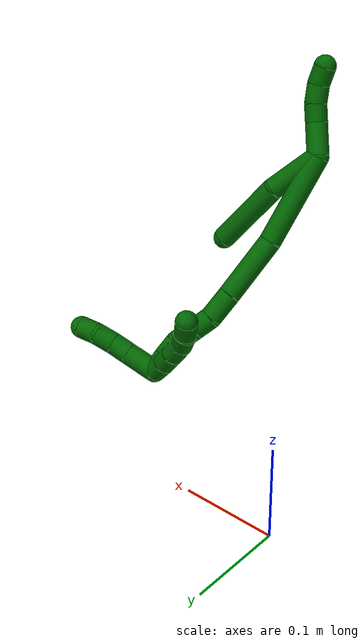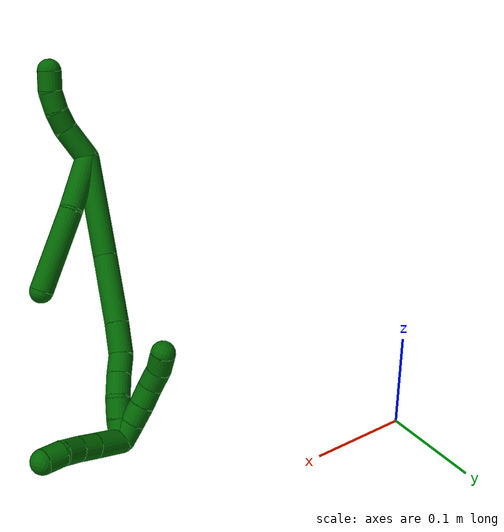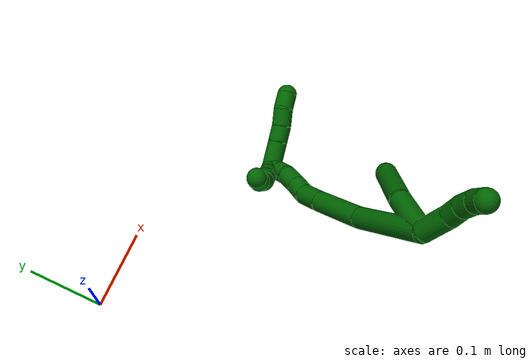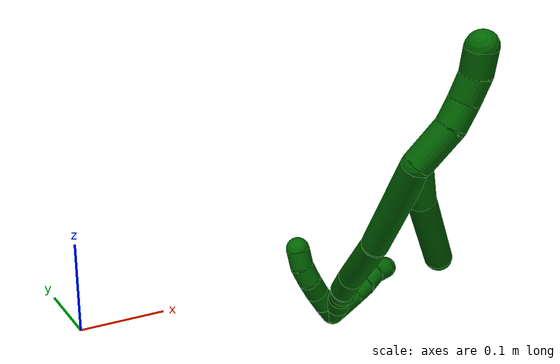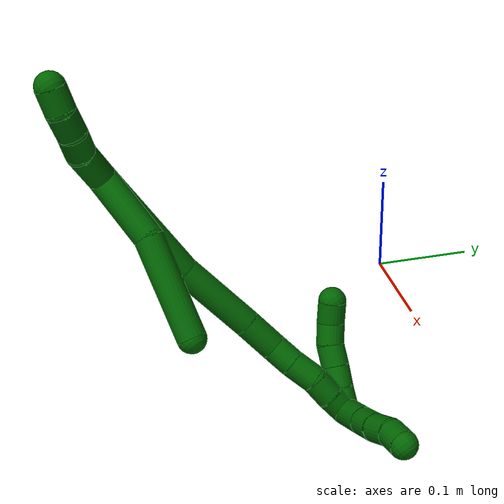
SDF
<sdf version="1.7">
 <world name="default">
  <model name="6">
   <static>0</static>
   <link name="6">
    <collision name="collision-cylinder-e_1_2_8">
     <pose>0.003228 -0.000587 0.030469 0.019279 0.105536 0.001018</pose>
     <geometry><cylinder><radius>0.0125</radius><length>0.061289</length></cylinder></geometry>
     <surface>
      <friction><ode><mu>1.16</mu><mu2>1.16</mu2><slip1>0</slip1><slip2>0</slip2></ode></friction>
      <contact><ode><kp>1e+06</kp><kd>1</kd><max_vel>0</max_vel><min_depth>0.001</min_depth></ode></contact>
     </surface>
    </collision>
    <visual name="visual-cylinder-e_1_2_8">
     <pose>0.003228 -0.000587 0.030469 0.019279 0.105536 0.001018</pose>
     <geometry><cylinder><radius>0.0125</radius><length>0.061289</length></cylinder></geometry>
     <material><ambient>0 0.392157 0.003922 1</ambient></material>
    </visual>
    <collision name="collision-cylinder-e_2_8_6">
     <pose>0.007311 -0.013169 0.103631 0.273873 0.019273 0.002656</pose>
     <geometry><cylinder><radius>0.0125</radius><length>0.088711</length></cylinder></geometry>
     <surface>
      <friction><ode><mu>1.16</mu><mu2>1.16</mu2><slip1>0</slip1><slip2>0</slip2></ode></friction>
      <contact><ode><kp>1e+06</kp><kd>1</kd><max_vel>0</max_vel><min_depth>0.001</min_depth></ode></contact>
     </surface>
    </collision>
    <visual name="visual-cylinder-e_2_8_6">
     <pose>0.007311 -0.013169 0.103631 0.273873 0.019273 0.002656</pose>
     <geometry><cylinder><radius>0.0125</radius><length>0.088711</length></cylinder></geometry>
     <material><ambient>0 0.392157 0.003922 1</ambient></material>
    </visual>
    <collision name="collision-cylinder-e_1_2_9">
     <pose>-0.015026 0.008717 -0.007254 -2.2648 -0.924269 1.63135</pose>
     <geometry><cylinder><radius>0.0125</radius><length>0.03765</length></cylinder></geometry>
     <surface>
      <friction><ode><mu>1.16</mu><mu2>1.16</mu2><slip1>0</slip1><slip2>0</slip2></ode></friction>
      <contact><ode><kp>1e+06</kp><kd>1</kd><max_vel>0</max_vel><min_depth>0.001</min_depth></ode></contact>
     </surface>
    </collision>
    <visual name="visual-cylinder-e_1_2_9">
     <pose>-0.015026 0.008717 -0.007254 -2.2648 -0.924269 1.63135</pose>
     <geometry><cylinder><radius>0.0125</radius><length>0.03765</length></cylinder></geometry>
     <material><ambient>0 0.392157 0.003922 1</ambient></material>
    </visual>
    <collision name="collision-cylinder-e_2_9_10">
     <pose>-0.036656 0.023981 -0.019287 -2.20147 -0.683727 1.22199</pose>
     <geometry><cylinder><radius>0.0125</radius><length>0.02091</length></cylinder></geometry>
     <surface>
      <friction><ode><mu>1.16</mu><mu2>1.16</mu2><slip1>0</slip1><slip2>0</slip2></ode></friction>
      <contact><ode><kp>1e+06</kp><kd>1</kd><max_vel>0</max_vel><min_depth>0.001</min_depth></ode></contact>
     </surface>
    </collision>
    <visual name="visual-cylinder-e_2_9_10">
     <pose>-0.036656 0.023981 -0.019287 -2.20147 -0.683727 1.22199</pose>
     <geometry><cylinder><radius>0.0125</radius><length>0.02091</length></cylinder></geometry>
     <material><ambient>0 0.392157 0.003922 1</ambient></material>
    </visual>
    <collision name="collision-cylinder-e_3_10_11">
     <pose>-0.049179 0.036112 -0.030595 -2.43391 -0.603201 1.39988</pose>
     <geometry><cylinder><radius>0.0125</radius><length>0.020866</length></cylinder></geometry>
     <surface>
      <friction><ode><mu>1.16</mu><mu2>1.16</mu2><slip1>0</slip1><slip2>0</slip2></ode></friction>
      <contact><ode><kp>1e+06</kp><kd>1</kd><max_vel>0</max_vel><min_depth>0.001</min_depth></ode></contact>
     </surface>
    </collision>
    <visual name="visual-cylinder-e_3_10_11">
     <pose>-0.049179 0.036112 -0.030595 -2.43391 -0.603201 1.39988</pose>
     <geometry><cylinder><radius>0.0125</radius><length>0.020866</length></cylinder></geometry>
     <material><ambient>0 0.392157 0.003922 1</ambient></material>
    </visual>
    <collision name="collision-cylinder-e_4_11_5">
     <pose>-0.058719 0.046767 -0.045309 -2.58708 -0.359848 1.1374</pose>
     <geometry><cylinder><radius>0.0125</radius><length>0.020574</length></cylinder></geometry>
     <surface>
      <friction><ode><mu>1.16</mu><mu2>1.16</mu2><slip1>0</slip1><slip2>0</slip2></ode></friction>
      <contact><ode><kp>1e+06</kp><kd>1</kd><max_vel>0</max_vel><min_depth>0.001</min_depth></ode></contact>
     </surface>
    </collision>
    <visual name="visual-cylinder-e_4_11_5">
     <pose>-0.058719 0.046767 -0.045309 -2.58708 -0.359848 1.1374</pose>
     <geometry><cylinder><radius>0.0125</radius><length>0.020574</length></cylinder></geometry>
     <material><ambient>0 0.392157 0.003922 1</ambient></material>
    </visual>
    <collision name="collision-cylinder-e_1_2_12">
     <pose>0.027315 -0.011786 0.043835 0.262661 0.541709 0.073324</pose>
     <geometry><cylinder><radius>0.0125</radius><length>0.105953</length></cylinder></geometry>
     <surface>
      <friction><ode><mu>1.16</mu><mu2>1.16</mu2><slip1>0</slip1><slip2>0</slip2></ode></friction>
      <contact><ode><kp>1e+06</kp><kd>1</kd><max_vel>0</max_vel><min_depth>0.001</min_depth></ode></contact>
     </surface>
    </collision>
    <visual name="visual-cylinder-e_1_2_12">
     <pose>0.027315 -0.011786 0.043835 0.262661 0.541709 0.073324</pose>
     <geometry><cylinder><radius>0.0125</radius><length>0.105953</length></cylinder></geometry>
     <material><ambient>0 0.392157 0.003922 1</ambient></material>
    </visual>
    <collision name="collision-cylinder-e_2_12_13">
     <pose>0.073351 -0.025624 0.118979 0.065454 0.53796 0.018049</pose>
     <geometry><cylinder><radius>0.0125</radius><length>0.073073</length></cylinder></geometry>
     <surface>
      <friction><ode><mu>1.16</mu><mu2>1.16</mu2><slip1>0</slip1><slip2>0</slip2></ode></friction>
      <contact><ode><kp>1e+06</kp><kd>1</kd><max_vel>0</max_vel><min_depth>0.001</min_depth></ode></contact>
     </surface>
    </collision>
    <visual name="visual-cylinder-e_2_12_13">
     <pose>0.073351 -0.025624 0.118979 0.065454 0.53796 0.018049</pose>
     <geometry><cylinder><radius>0.0125</radius><length>0.073073</length></cylinder></geometry>
     <material><ambient>0 0.392157 0.003922 1</ambient></material>
    </visual>
    <collision name="collision-cylinder-e_3_13_14">
     <pose>0.099968 -0.028646 0.164712 0.067093 0.49994 0.017135</pose>
     <geometry><cylinder><radius>0.0125</radius><length>0.032945</length></cylinder></geometry>
     <surface>
      <friction><ode><mu>1.16</mu><mu2>1.16</mu2><slip1>0</slip1><slip2>0</slip2></ode></friction>
      <contact><ode><kp>1e+06</kp><kd>1</kd><max_vel>0</max_vel><min_depth>0.001</min_depth></ode></contact>
     </surface>
    </collision>
    <visual name="visual-cylinder-e_3_13_14">
     <pose>0.099968 -0.028646 0.164712 0.067093 0.49994 0.017135</pose>
     <geometry><cylinder><radius>0.0125</radius><length>0.032945</length></cylinder></geometry>
     <material><ambient>0 0.392157 0.003922 1</ambient></material>
    </visual>
    <collision name="collision-cylinder-e_4_14_15">
     <pose>0.110758 -0.028488 0.189715 -0.106086 0.26553 -0.014181</pose>
     <geometry><cylinder><radius>0.0125</radius><length>0.02205</length></cylinder></geometry>
     <surface>
      <friction><ode><mu>1.16</mu><mu2>1.16</mu2><slip1>0</slip1><slip2>0</slip2></ode></friction>
      <contact><ode><kp>1e+06</kp><kd>1</kd><max_vel>0</max_vel><min_depth>0.001</min_depth></ode></contact>
     </surface>
    </collision>
    <visual name="visual-cylinder-e_4_14_15">
     <pose>0.110758 -0.028488 0.189715 -0.106086 0.26553 -0.014181</pose>
     <geometry><cylinder><radius>0.0125</radius><length>0.02205</length></cylinder></geometry>
     <material><ambient>0 0.392157 0.003922 1</ambient></material>
    </visual>
    <collision name="collision-cylinder-e_5_15_16">
     <pose>0.117555 -0.025364 0.211678 -0.173748 0.325785 -0.028625</pose>
     <geometry><cylinder><radius>0.0125</radius><length>0.024399</length></cylinder></geometry>
     <surface>
      <friction><ode><mu>1.16</mu><mu2>1.16</mu2><slip1>0</slip1><slip2>0</slip2></ode></friction>
      <contact><ode><kp>1e+06</kp><kd>1</kd><max_vel>0</max_vel><min_depth>0.001</min_depth></ode></contact>
     </surface>
    </collision>
    <visual name="visual-cylinder-e_5_15_16">
     <pose>0.117555 -0.025364 0.211678 -0.173748 0.325785 -0.028625</pose>
     <geometry><cylinder><radius>0.0125</radius><length>0.024399</length></cylinder></geometry>
     <material><ambient>0 0.392157 0.003922 1</ambient></material>
    </visual>
    <collision name="collision-cylinder-e_6_16_17">
     <pose>0.125702 -0.024612 0.232533 0.130842 0.417909 0.027783</pose>
     <geometry><cylinder><radius>0.0125</radius><length>0.020906</length></cylinder></geometry>
     <surface>
      <friction><ode><mu>1.16</mu><mu2>1.16</mu2><slip1>0</slip1><slip2>0</slip2></ode></friction>
      <contact><ode><kp>1e+06</kp><kd>1</kd><max_vel>0</max_vel><min_depth>0.001</min_depth></ode></contact>
     </surface>
    </collision>
    <visual name="visual-cylinder-e_6_16_17">
     <pose>0.125702 -0.024612 0.232533 0.130842 0.417909 0.027783</pose>
     <geometry><cylinder><radius>0.0125</radius><length>0.020906</length></cylinder></geometry>
     <material><ambient>0 0.392157 0.003922 1</ambient></material>
    </visual>
    <collision name="collision-cylinder-e_7_17_1">
     <pose>0.13521 -0.027042 0.250821 0.133391 0.534458 0.03657</pose>
     <geometry><cylinder><radius>0.0125</radius><length>0.020673</length></cylinder></geometry>
     <surface>
      <friction><ode><mu>1.16</mu><mu2>1.16</mu2><slip1>0</slip1><slip2>0</slip2></ode></friction>
      <contact><ode><kp>1e+06</kp><kd>1</kd><max_vel>0</max_vel><min_depth>0.001</min_depth></ode></contact>
     </surface>
    </collision>
    <visual name="visual-cylinder-e_7_17_1">
     <pose>0.13521 -0.027042 0.250821 0.133391 0.534458 0.03657</pose>
     <geometry><cylinder><radius>0.0125</radius><length>0.020673</length></cylinder></geometry>
     <material><ambient>0 0.392157 0.003922 1</ambient></material>
    </visual>
    <collision name="collision-cylinder-e_1_1_18">
     <pose>0.142032 -0.02467 0.250421 -2.7735 0.156363 -0.796686</pose>
     <geometry><cylinder><radius>0.0125</radius><length>0.02</length></cylinder></geometry>
     <surface>
      <friction><ode><mu>1.16</mu><mu2>1.16</mu2><slip1>0</slip1><slip2>0</slip2></ode></friction>
      <contact><ode><kp>1e+06</kp><kd>1</kd><max_vel>0</max_vel><min_depth>0.001</min_depth></ode></contact>
     </surface>
    </collision>
    <visual name="visual-cylinder-e_1_1_18">
     <pose>0.142032 -0.02467 0.250421 -2.7735 0.156363 -0.796686</pose>
     <geometry><cylinder><radius>0.0125</radius><length>0.02</length></cylinder></geometry>
     <material><ambient>0 0.392157 0.003922 1</ambient></material>
    </visual>
    <collision name="collision-cylinder-e_2_18_19">
     <pose>0.145001 -0.017026 0.232188 -2.71576 0.141666 -0.634217</pose>
     <geometry><cylinder><radius>0.0125</radius><length>0.02</length></cylinder></geometry>
     <surface>
      <friction><ode><mu>1.16</mu><mu2>1.16</mu2><slip1>0</slip1><slip2>0</slip2></ode></friction>
      <contact><ode><kp>1e+06</kp><kd>1</kd><max_vel>0</max_vel><min_depth>0.001</min_depth></ode></contact>
     </surface>
    </collision>
    <visual name="visual-cylinder-e_2_18_19">
     <pose>0.145001 -0.017026 0.232188 -2.71576 0.141666 -0.634217</pose>
     <geometry><cylinder><radius>0.0125</radius><length>0.02</length></cylinder></geometry>
     <material><ambient>0 0.392157 0.003922 1</ambient></material>
    </visual>
    <collision name="collision-cylinder-e_3_19_20">
     <pose>0.14722 -0.00889 0.214064 -2.72347 0.080736 -0.376244</pose>
     <geometry><cylinder><radius>0.0125</radius><length>0.02</length></cylinder></geometry>
     <surface>
      <friction><ode><mu>1.16</mu><mu2>1.16</mu2><slip1>0</slip1><slip2>0</slip2></ode></friction>
      <contact><ode><kp>1e+06</kp><kd>1</kd><max_vel>0</max_vel><min_depth>0.001</min_depth></ode></contact>
     </surface>
    </collision>
    <visual name="visual-cylinder-e_3_19_20">
     <pose>0.14722 -0.00889 0.214064 -2.72347 0.080736 -0.376244</pose>
     <geometry><cylinder><radius>0.0125</radius><length>0.02</length></cylinder></geometry>
     <material><ambient>0 0.392157 0.003922 1</ambient></material>
    </visual>
    <collision name="collision-cylinder-e_4_20_21">
     <pose>0.149336 0.001386 0.197242 -2.46231 0.131358 -0.368092</pose>
     <geometry><cylinder><radius>0.0125</radius><length>0.02</length></cylinder></geometry>
     <surface>
      <friction><ode><mu>1.16</mu><mu2>1.16</mu2><slip1>0</slip1><slip2>0</slip2></ode></friction>
      <contact><ode><kp>1e+06</kp><kd>1</kd><max_vel>0</max_vel><min_depth>0.001</min_depth></ode></contact>
     </surface>
    </collision>
    <visual name="visual-cylinder-e_4_20_21">
     <pose>0.149336 0.001386 0.197242 -2.46231 0.131358 -0.368092</pose>
     <geometry><cylinder><radius>0.0125</radius><length>0.02</length></cylinder></geometry>
     <material><ambient>0 0.392157 0.003922 1</ambient></material>
    </visual>
    <collision name="collision-cylinder-e_5_21_4">
     <pose>0.149992 0.015025 0.182847 -2.30448 -0.065377 0.146757</pose>
     <geometry><cylinder><radius>0.0125</radius><length>0.02</length></cylinder></geometry>
     <surface>
      <friction><ode><mu>1.16</mu><mu2>1.16</mu2><slip1>0</slip1><slip2>0</slip2></ode></friction>
      <contact><ode><kp>1e+06</kp><kd>1</kd><max_vel>0</max_vel><min_depth>0.001</min_depth></ode></contact>
     </surface>
    </collision>
    <visual name="visual-cylinder-e_5_21_4">
     <pose>0.149992 0.015025 0.182847 -2.30448 -0.065377 0.146757</pose>
     <geometry><cylinder><radius>0.0125</radius><length>0.02</length></cylinder></geometry>
     <material><ambient>0 0.392157 0.003922 1</ambient></material>
    </visual>
    <collision name="collision-cylinder-e_1_1_22">
     <pose>0.129663 -0.017497 0.268738 -0.867265 -0.655263 0.312186</pose>
     <geometry><cylinder><radius>0.0125</radius><length>0.035485</length></cylinder></geometry>
     <surface>
      <friction><ode><mu>1.16</mu><mu2>1.16</mu2><slip1>0</slip1><slip2>0</slip2></ode></friction>
      <contact><ode><kp>1e+06</kp><kd>1</kd><max_vel>0</max_vel><min_depth>0.001</min_depth></ode></contact>
     </surface>
    </collision>
    <visual name="visual-cylinder-e_1_1_22">
     <pose>0.129663 -0.017497 0.268738 -0.867265 -0.655263 0.312186</pose>
     <geometry><cylinder><radius>0.0125</radius><length>0.035485</length></cylinder></geometry>
     <material><ambient>0 0.392157 0.003922 1</ambient></material>
    </visual>
    <collision name="collision-cylinder-e_2_22_23">
     <pose>0.112372 -0.000146 0.28319 -0.891181 -0.650483 0.319385</pose>
     <geometry><cylinder><radius>0.0125</radius><length>0.0214</length></cylinder></geometry>
     <surface>
      <friction><ode><mu>1.16</mu><mu2>1.16</mu2><slip1>0</slip1><slip2>0</slip2></ode></friction>
      <contact><ode><kp>1e+06</kp><kd>1</kd><max_vel>0</max_vel><min_depth>0.001</min_depth></ode></contact>
     </surface>
    </collision>
    <visual name="visual-cylinder-e_2_22_23">
     <pose>0.112372 -0.000146 0.28319 -0.891181 -0.650483 0.319385</pose>
     <geometry><cylinder><radius>0.0125</radius><length>0.0214</length></cylinder></geometry>
     <material><ambient>0 0.392157 0.003922 1</ambient></material>
    </visual>
    <collision name="collision-cylinder-e_3_23_24">
     <pose>0.100362 0.014379 0.294156 -0.953125 -0.51838 0.27208</pose>
     <geometry><cylinder><radius>0.0125</radius><length>0.022321</length></cylinder></geometry>
     <surface>
      <friction><ode><mu>1.16</mu><mu2>1.16</mu2><slip1>0</slip1><slip2>0</slip2></ode></friction>
      <contact><ode><kp>1e+06</kp><kd>1</kd><max_vel>0</max_vel><min_depth>0.001</min_depth></ode></contact>
     </surface>
    </collision>
    <visual name="visual-cylinder-e_3_23_24">
     <pose>0.100362 0.014379 0.294156 -0.953125 -0.51838 0.27208</pose>
     <geometry><cylinder><radius>0.0125</radius><length>0.022321</length></cylinder></geometry>
     <material><ambient>0 0.392157 0.003922 1</ambient></material>
    </visual>
    <collision name="collision-cylinder-e_4_24_3">
     <pose>0.088893 0.027091 0.30682 -0.598539 -0.608053 0.193007</pose>
     <geometry><cylinder><radius>0.0125</radius><length>0.020794</length></cylinder></geometry>
     <surface>
      <friction><ode><mu>1.16</mu><mu2>1.16</mu2><slip1>0</slip1><slip2>0</slip2></ode></friction>
      <contact><ode><kp>1e+06</kp><kd>1</kd><max_vel>0</max_vel><min_depth>0.001</min_depth></ode></contact>
     </surface>
    </collision>
    <visual name="visual-cylinder-e_4_24_3">
     <pose>0.088893 0.027091 0.30682 -0.598539 -0.608053 0.193007</pose>
     <geometry><cylinder><radius>0.0125</radius><length>0.020794</length></cylinder></geometry>
     <material><ambient>0 0.392157 0.003922 1</ambient></material>
    </visual>
    <collision name="collision-sphere-3">
     <pose>0.082954 0.031899 0.31387 0 -0 0</pose>
     <geometry><sphere><radius>0.0125</radius></sphere></geometry>
     <surface>
      <friction><ode><mu>1.16</mu><mu2>1.16</mu2><slip1>0</slip1><slip2>0</slip2></ode></friction>
      <contact><ode><kp>1e+06</kp><kd>1</kd><max_vel>0</max_vel><min_depth>0.001</min_depth></ode></contact>
     </surface>
    </collision>
    <visual name="visual-sphere-3">
     <pose>0.082954 0.031899 0.31387 0 -0 0</pose>
     <geometry><sphere><radius>0.0125</radius></sphere></geometry>
     <material><ambient>0 0.392157 0.003922 1</ambient></material>
    </visual>
    <collision name="collision-sphere-24">
     <pose>0.094833 0.022282 0.29977 0 -0 0</pose>
     <geometry><sphere><radius>0.0125</radius></sphere></geometry>
     <surface>
      <friction><ode><mu>1.16</mu><mu2>1.16</mu2><slip1>0</slip1><slip2>0</slip2></ode></friction>
      <contact><ode><kp>1e+06</kp><kd>1</kd><max_vel>0</max_vel><min_depth>0.001</min_depth></ode></contact>
     </surface>
    </collision>
    <visual name="visual-sphere-24">
     <pose>0.094833 0.022282 0.29977 0 -0 0</pose>
     <geometry><sphere><radius>0.0125</radius></sphere></geometry>
     <material><ambient>0 0.392157 0.003922 1</ambient></material>
    </visual>
    <collision name="collision-sphere-23">
     <pose>0.105892 0.006477 0.288541 0 -0 0</pose>
     <geometry><sphere><radius>0.0125</radius></sphere></geometry>
     <surface>
      <friction><ode><mu>1.16</mu><mu2>1.16</mu2><slip1>0</slip1><slip2>0</slip2></ode></friction>
      <contact><ode><kp>1e+06</kp><kd>1</kd><max_vel>0</max_vel><min_depth>0.001</min_depth></ode></contact>
     </surface>
    </collision>
    <visual name="visual-sphere-23">
     <pose>0.105892 0.006477 0.288541 0 -0 0</pose>
     <geometry><sphere><radius>0.0125</radius></sphere></geometry>
     <material><ambient>0 0.392157 0.003922 1</ambient></material>
    </visual>
    <collision name="collision-sphere-22">
     <pose>0.118851 -0.006769 0.277838 0 -0 0</pose>
     <geometry><sphere><radius>0.0125</radius></sphere></geometry>
     <surface>
      <friction><ode><mu>1.16</mu><mu2>1.16</mu2><slip1>0</slip1><slip2>0</slip2></ode></friction>
      <contact><ode><kp>1e+06</kp><kd>1</kd><max_vel>0</max_vel><min_depth>0.001</min_depth></ode></contact>
     </surface>
    </collision>
    <visual name="visual-sphere-22">
     <pose>0.118851 -0.006769 0.277838 0 -0 0</pose>
     <geometry><sphere><radius>0.0125</radius></sphere></geometry>
     <material><ambient>0 0.392157 0.003922 1</ambient></material>
    </visual>
    <collision name="collision-sphere-4">
     <pose>0.149339 0.022436 0.176165 0 -0 0</pose>
     <geometry><sphere><radius>0.0125</radius></sphere></geometry>
     <surface>
      <friction><ode><mu>1.16</mu><mu2>1.16</mu2><slip1>0</slip1><slip2>0</slip2></ode></friction>
      <contact><ode><kp>1e+06</kp><kd>1</kd><max_vel>0</max_vel><min_depth>0.001</min_depth></ode></contact>
     </surface>
    </collision>
    <visual name="visual-sphere-4">
     <pose>0.149339 0.022436 0.176165 0 -0 0</pose>
     <geometry><sphere><radius>0.0125</radius></sphere></geometry>
     <material><ambient>0 0.392157 0.003922 1</ambient></material>
    </visual>
    <collision name="collision-sphere-21">
     <pose>0.150646 0.007614 0.189529 0 -0 0</pose>
     <geometry><sphere><radius>0.0125</radius></sphere></geometry>
     <surface>
      <friction><ode><mu>1.16</mu><mu2>1.16</mu2><slip1>0</slip1><slip2>0</slip2></ode></friction>
      <contact><ode><kp>1e+06</kp><kd>1</kd><max_vel>0</max_vel><min_depth>0.001</min_depth></ode></contact>
     </surface>
    </collision>
    <visual name="visual-sphere-21">
     <pose>0.150646 0.007614 0.189529 0 -0 0</pose>
     <geometry><sphere><radius>0.0125</radius></sphere></geometry>
     <material><ambient>0 0.392157 0.003922 1</ambient></material>
    </visual>
    <collision name="collision-sphere-20">
     <pose>0.148026 -0.004842 0.204955 0 -0 0</pose>
     <geometry><sphere><radius>0.0125</radius></sphere></geometry>
     <surface>
      <friction><ode><mu>1.16</mu><mu2>1.16</mu2><slip1>0</slip1><slip2>0</slip2></ode></friction>
      <contact><ode><kp>1e+06</kp><kd>1</kd><max_vel>0</max_vel><min_depth>0.001</min_depth></ode></contact>
     </surface>
    </collision>
    <visual name="visual-sphere-20">
     <pose>0.148026 -0.004842 0.204955 0 -0 0</pose>
     <geometry><sphere><radius>0.0125</radius></sphere></geometry>
     <material><ambient>0 0.392157 0.003922 1</ambient></material>
    </visual>
    <collision name="collision-sphere-11">
     <pose>-0.055097 0.041697 -0.037124 0 -0 0</pose>
     <geometry><sphere><radius>0.0125</radius></sphere></geometry>
     <surface>
      <friction><ode><mu>1.16</mu><mu2>1.16</mu2><slip1>0</slip1><slip2>0</slip2></ode></friction>
      <contact><ode><kp>1e+06</kp><kd>1</kd><max_vel>0</max_vel><min_depth>0.001</min_depth></ode></contact>
     </surface>
    </collision>
    <visual name="visual-sphere-11">
     <pose>-0.055097 0.041697 -0.037124 0 -0 0</pose>
     <geometry><sphere><radius>0.0125</radius></sphere></geometry>
     <material><ambient>0 0.392157 0.003922 1</ambient></material>
    </visual>
    <collision name="collision-sphere-10">
     <pose>-0.04326 0.030526 -0.024066 0 -0 0</pose>
     <geometry><sphere><radius>0.0125</radius></sphere></geometry>
     <surface>
      <friction><ode><mu>1.16</mu><mu2>1.16</mu2><slip1>0</slip1><slip2>0</slip2></ode></friction>
      <contact><ode><kp>1e+06</kp><kd>1</kd><max_vel>0</max_vel><min_depth>0.001</min_depth></ode></contact>
     </surface>
    </collision>
    <visual name="visual-sphere-10">
     <pose>-0.04326 0.030526 -0.024066 0 -0 0</pose>
     <geometry><sphere><radius>0.0125</radius></sphere></geometry>
     <material><ambient>0 0.392157 0.003922 1</ambient></material>
    </visual>
    <collision name="collision-sphere-6">
     <pose>0.008166 -0.025163 0.146326 0 -0 0</pose>
     <geometry><sphere><radius>0.0125</radius></sphere></geometry>
     <surface>
      <friction><ode><mu>1.16</mu><mu2>1.16</mu2><slip1>0</slip1><slip2>0</slip2></ode></friction>
      <contact><ode><kp>1e+06</kp><kd>1</kd><max_vel>0</max_vel><min_depth>0.001</min_depth></ode></contact>
     </surface>
    </collision>
    <visual name="visual-sphere-6">
     <pose>0.008166 -0.025163 0.146326 0 -0 0</pose>
     <geometry><sphere><radius>0.0125</radius></sphere></geometry>
     <material><ambient>0 0.392157 0.003922 1</ambient></material>
    </visual>
    <collision name="collision-sphere-9">
     <pose>-0.030051 0.017435 -0.014507 0 -0 0</pose>
     <geometry><sphere><radius>0.0125</radius></sphere></geometry>
     <surface>
      <friction><ode><mu>1.16</mu><mu2>1.16</mu2><slip1>0</slip1><slip2>0</slip2></ode></friction>
      <contact><ode><kp>1e+06</kp><kd>1</kd><max_vel>0</max_vel><min_depth>0.001</min_depth></ode></contact>
     </surface>
    </collision>
    <visual name="visual-sphere-9">
     <pose>-0.030051 0.017435 -0.014507 0 -0 0</pose>
     <geometry><sphere><radius>0.0125</radius></sphere></geometry>
     <material><ambient>0 0.392157 0.003922 1</ambient></material>
    </visual>
    <collision name="collision-sphere-2">
     <geometry><sphere><radius>0.0125</radius></sphere></geometry>
     <surface>
      <friction><ode><mu>1.16</mu><mu2>1.16</mu2><slip1>0</slip1><slip2>0</slip2></ode></friction>
      <contact><ode><kp>1e+06</kp><kd>1</kd><max_vel>0</max_vel><min_depth>0.001</min_depth></ode></contact>
     </surface>
    </collision>
    <visual name="visual-sphere-2">
     <geometry><sphere><radius>0.0125</radius></sphere></geometry>
     <material><ambient>0 0.392157 0.003922 1</ambient></material>
    </visual>
    <collision name="collision-sphere-19">
     <pose>0.146413 -0.012937 0.223173 0 -0 0</pose>
     <geometry><sphere><radius>0.0125</radius></sphere></geometry>
     <surface>
      <friction><ode><mu>1.16</mu><mu2>1.16</mu2><slip1>0</slip1><slip2>0</slip2></ode></friction>
      <contact><ode><kp>1e+06</kp><kd>1</kd><max_vel>0</max_vel><min_depth>0.001</min_depth></ode></contact>
     </surface>
    </collision>
    <visual name="visual-sphere-19">
     <pose>0.146413 -0.012937 0.223173 0 -0 0</pose>
     <geometry><sphere><radius>0.0125</radius></sphere></geometry>
     <material><ambient>0 0.392157 0.003922 1</ambient></material>
    </visual>
    <collision name="collision-sphere-8">
     <pose>0.006456 -0.001175 0.060937 0 -0 0</pose>
     <geometry><sphere><radius>0.0125</radius></sphere></geometry>
     <surface>
      <friction><ode><mu>1.16</mu><mu2>1.16</mu2><slip1>0</slip1><slip2>0</slip2></ode></friction>
      <contact><ode><kp>1e+06</kp><kd>1</kd><max_vel>0</max_vel><min_depth>0.001</min_depth></ode></contact>
     </surface>
    </collision>
    <visual name="visual-sphere-8">
     <pose>0.006456 -0.001175 0.060937 0 -0 0</pose>
     <geometry><sphere><radius>0.0125</radius></sphere></geometry>
     <material><ambient>0 0.392157 0.003922 1</ambient></material>
    </visual>
    <collision name="collision-sphere-5">
     <pose>-0.062342 0.051836 -0.053494 0 -0 0</pose>
     <geometry><sphere><radius>0.0125</radius></sphere></geometry>
     <surface>
      <friction><ode><mu>1.16</mu><mu2>1.16</mu2><slip1>0</slip1><slip2>0</slip2></ode></friction>
      <contact><ode><kp>1e+06</kp><kd>1</kd><max_vel>0</max_vel><min_depth>0.001</min_depth></ode></contact>
     </surface>
    </collision>
    <visual name="visual-sphere-5">
     <pose>-0.062342 0.051836 -0.053494 0 -0 0</pose>
     <geometry><sphere><radius>0.0125</radius></sphere></geometry>
     <material><ambient>0 0.392157 0.003922 1</ambient></material>
    </visual>
    <collision name="collision-sphere-12">
     <pose>0.05463 -0.023572 0.08767 0 -0 0</pose>
     <geometry><sphere><radius>0.0125</radius></sphere></geometry>
     <surface>
      <friction><ode><mu>1.16</mu><mu2>1.16</mu2><slip1>0</slip1><slip2>0</slip2></ode></friction>
      <contact><ode><kp>1e+06</kp><kd>1</kd><max_vel>0</max_vel><min_depth>0.001</min_depth></ode></contact>
     </surface>
    </collision>
    <visual name="visual-sphere-12">
     <pose>0.05463 -0.023572 0.08767 0 -0 0</pose>
     <geometry><sphere><radius>0.0125</radius></sphere></geometry>
     <material><ambient>0 0.392157 0.003922 1</ambient></material>
    </visual>
    <collision name="collision-sphere-13">
     <pose>0.092071 -0.027677 0.150288 0 -0 0</pose>
     <geometry><sphere><radius>0.0125</radius></sphere></geometry>
     <surface>
      <friction><ode><mu>1.16</mu><mu2>1.16</mu2><slip1>0</slip1><slip2>0</slip2></ode></friction>
      <contact><ode><kp>1e+06</kp><kd>1</kd><max_vel>0</max_vel><min_depth>0.001</min_depth></ode></contact>
     </surface>
    </collision>
    <visual name="visual-sphere-13">
     <pose>0.092071 -0.027677 0.150288 0 -0 0</pose>
     <geometry><sphere><radius>0.0125</radius></sphere></geometry>
     <material><ambient>0 0.392157 0.003922 1</ambient></material>
    </visual>
    <collision name="collision-sphere-14">
     <pose>0.107865 -0.029615 0.179136 0 -0 0</pose>
     <geometry><sphere><radius>0.0125</radius></sphere></geometry>
     <surface>
      <friction><ode><mu>1.16</mu><mu2>1.16</mu2><slip1>0</slip1><slip2>0</slip2></ode></friction>
      <contact><ode><kp>1e+06</kp><kd>1</kd><max_vel>0</max_vel><min_depth>0.001</min_depth></ode></contact>
     </surface>
    </collision>
    <visual name="visual-sphere-14">
     <pose>0.107865 -0.029615 0.179136 0 -0 0</pose>
     <geometry><sphere><radius>0.0125</radius></sphere></geometry>
     <material><ambient>0 0.392157 0.003922 1</ambient></material>
    </visual>
    <collision name="collision-sphere-15">
     <pose>0.113651 -0.027362 0.200294 0 -0 0</pose>
     <geometry><sphere><radius>0.0125</radius></sphere></geometry>
     <surface>
      <friction><ode><mu>1.16</mu><mu2>1.16</mu2><slip1>0</slip1><slip2>0</slip2></ode></friction>
      <contact><ode><kp>1e+06</kp><kd>1</kd><max_vel>0</max_vel><min_depth>0.001</min_depth></ode></contact>
     </surface>
    </collision>
    <visual name="visual-sphere-15">
     <pose>0.113651 -0.027362 0.200294 0 -0 0</pose>
     <geometry><sphere><radius>0.0125</radius></sphere></geometry>
     <material><ambient>0 0.392157 0.003922 1</ambient></material>
    </visual>
    <collision name="collision-sphere-16">
     <pose>0.12146 -0.023366 0.223061 0 -0 0</pose>
     <geometry><sphere><radius>0.0125</radius></sphere></geometry>
     <surface>
      <friction><ode><mu>1.16</mu><mu2>1.16</mu2><slip1>0</slip1><slip2>0</slip2></ode></friction>
      <contact><ode><kp>1e+06</kp><kd>1</kd><max_vel>0</max_vel><min_depth>0.001</min_depth></ode></contact>
     </surface>
    </collision>
    <visual name="visual-sphere-16">
     <pose>0.12146 -0.023366 0.223061 0 -0 0</pose>
     <geometry><sphere><radius>0.0125</radius></sphere></geometry>
     <material><ambient>0 0.392157 0.003922 1</ambient></material>
    </visual>
    <collision name="collision-sphere-17">
     <pose>0.129945 -0.025859 0.242005 0 -0 0</pose>
     <geometry><sphere><radius>0.0125</radius></sphere></geometry>
     <surface>
      <friction><ode><mu>1.16</mu><mu2>1.16</mu2><slip1>0</slip1><slip2>0</slip2></ode></friction>
      <contact><ode><kp>1e+06</kp><kd>1</kd><max_vel>0</max_vel><min_depth>0.001</min_depth></ode></contact>
     </surface>
    </collision>
    <visual name="visual-sphere-17">
     <pose>0.129945 -0.025859 0.242005 0 -0 0</pose>
     <geometry><sphere><radius>0.0125</radius></sphere></geometry>
     <material><ambient>0 0.392157 0.003922 1</ambient></material>
    </visual>
    <collision name="collision-sphere-1">
     <pose>0.140475 -0.028225 0.259637 0 -0 0</pose>
     <geometry><sphere><radius>0.0125</radius></sphere></geometry>
     <surface>
      <friction><ode><mu>1.16</mu><mu2>1.16</mu2><slip1>0</slip1><slip2>0</slip2></ode></friction>
      <contact><ode><kp>1e+06</kp><kd>1</kd><max_vel>0</max_vel><min_depth>0.001</min_depth></ode></contact>
     </surface>
    </collision>
    <visual name="visual-sphere-1">
     <pose>0.140475 -0.028225 0.259637 0 -0 0</pose>
     <geometry><sphere><radius>0.0125</radius></sphere></geometry>
     <material><ambient>0 0.392157 0.003922 1</ambient></material>
    </visual>
    <collision name="collision-sphere-18">
     <pose>0.143589 -0.021116 0.241204 0 -0 0</pose>
     <geometry><sphere><radius>0.0125</radius></sphere></geometry>
     <surface>
      <friction><ode><mu>1.16</mu><mu2>1.16</mu2><slip1>0</slip1><slip2>0</slip2></ode></friction>
      <contact><ode><kp>1e+06</kp><kd>1</kd><max_vel>0</max_vel><min_depth>0.001</min_depth></ode></contact>
     </surface>
    </collision>
    <visual name="visual-sphere-18">
     <pose>0.143589 -0.021116 0.241204 0 -0 0</pose>
     <geometry><sphere><radius>0.0125</radius></sphere></geometry>
     <material><ambient>0 0.392157 0.003922 1</ambient></material>
    </visual>
    <inertial>
     <pose>0.060436 -0.00729 0.129401 0 -0 0</pose>
     <mass>0.75</mass>
     <inertia>
      <ixx>0.000244</ixx>
      <ixy>0</ixy>
      <ixz>0</ixz>
      <iyy>0.000258</iyy>
      <iyz>0</iyz>
      <izz>-1.5e-05</izz>
     </inertia>
    </inertial>
   </link>
   <pose>0.178095 -0.306172 0.229226 2.24465 0.304814 2.35516</pose>
  </model>
 </world>
</sdf>
